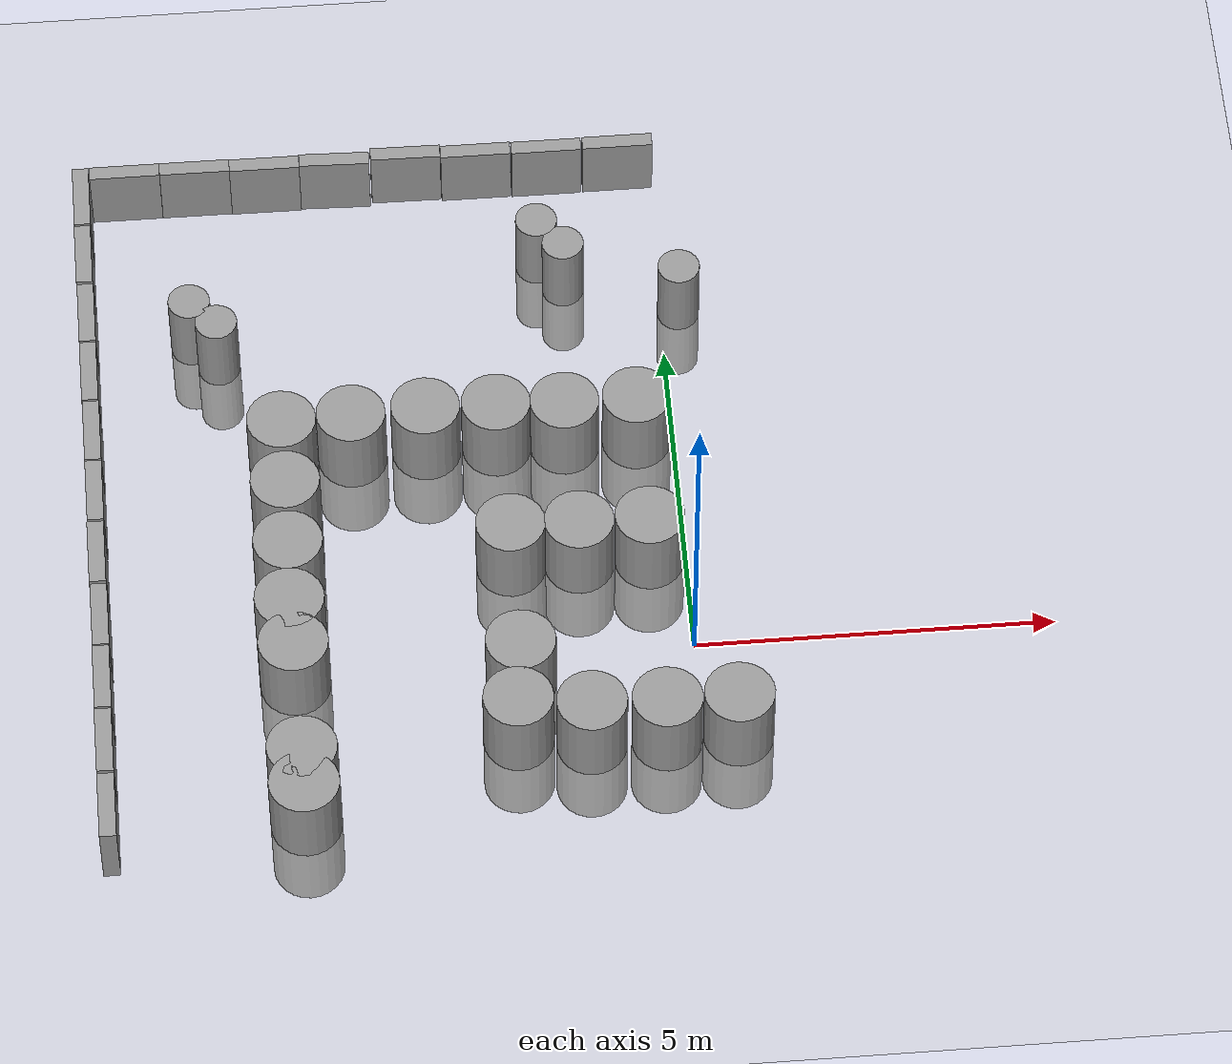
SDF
<sdf version="1.6">
 <world name="default">
  <model name="ground_plane">
   <static>1</static>
   <static>1</static>
   <link name="link">
    <collision name="collision">
     <geometry><plane><normal>0 0 1</normal><size>100 100</size></plane></geometry>
     <surface><friction><ode><mu>100</mu><mu2>50</mu2></ode></friction></surface>
    </collision>
    <visual name="visual">
     <cast_shadows>0</cast_shadows>
     <geometry><plane><normal>0 0 1</normal><size>100 100</size></plane></geometry>
     <material>
      <script><uri>file://media/materials/scripts/gazebo.material</uri><name>Gazebo/Grey</name></script>
     </material>
    </visual>
   </link>
  </model>
  <model name="unit_box_clone">
   <pose>-7.49845 8.11982 0.499998 0 5e-06 0.000244</pose>
   <link name="link">
    <inertial>
     <mass>1</mass>
     <inertia>
      <ixx>0.166667</ixx>
      <ixy>0</ixy>
      <ixz>0</ixz>
      <iyy>0.166667</iyy>
      <iyz>0</iyz>
      <izz>0.166667</izz>
     </inertia>
    </inertial>
    <collision name="collision"><geometry><box><size>1 0.210541 1</size></box></geometry></collision>
    <visual name="visual">
     <geometry><box><size>1 0.210541 1</size></box></geometry>
     <material>
      <script><name>Gazebo/Grey</name><uri>file://media/materials/scripts/gazebo.material</uri></script>
     </material>
    </visual>
   </link>
  </model>
  <model name="unit_box_clone_0">
   <pose>-6.49721 8.11971 0.5 0 0 -0.00255</pose>
   <link name="link">
    <inertial>
     <mass>1</mass>
     <inertia>
      <ixx>0.166667</ixx>
      <ixy>0</ixy>
      <ixz>0</ixz>
      <iyy>0.166667</iyy>
      <iyz>0</iyz>
      <izz>0.166667</izz>
     </inertia>
    </inertial>
    <collision name="collision"><geometry><box><size>1 0.210541 1</size></box></geometry></collision>
    <visual name="visual">
     <geometry><box><size>1 0.210541 1</size></box></geometry>
     <material>
      <script><name>Gazebo/Grey</name><uri>file://media/materials/scripts/gazebo.material</uri></script>
     </material>
    </visual>
   </link>
  </model>
  <model name="unit_box_clone_1">
   <pose>-5.49723 8.10829 0.5 0 0 -0.00255</pose>
   <link name="link">
    <inertial>
     <mass>1</mass>
     <inertia>
      <ixx>0.166667</ixx>
      <ixy>0</ixy>
      <ixz>0</ixz>
      <iyy>0.166667</iyy>
      <iyz>0</iyz>
      <izz>0.166667</izz>
     </inertia>
    </inertial>
    <collision name="collision"><geometry><box><size>1 0.210541 1</size></box></geometry></collision>
    <visual name="visual">
     <geometry><box><size>1 0.210541 1</size></box></geometry>
     <material>
      <script><name>Gazebo/Grey</name><uri>file://media/materials/scripts/gazebo.material</uri></script>
     </material>
    </visual>
   </link>
  </model>
  <model name="unit_box_clone_2">
   <pose>-4.49475 8.11073 0.499999 -1e-06 2e-06 -0.027192</pose>
   <link name="link">
    <inertial>
     <mass>1</mass>
     <inertia>
      <ixx>0.166667</ixx>
      <ixy>0</ixy>
      <ixz>0</ixz>
      <iyy>0.166667</iyy>
      <iyz>0</iyz>
      <izz>0.166667</izz>
     </inertia>
    </inertial>
    <collision name="collision"><geometry><box><size>1 0.210541 1</size></box></geometry></collision>
    <visual name="visual">
     <geometry><box><size>1 0.210541 1</size></box></geometry>
     <material>
      <script><name>Gazebo/Grey</name><uri>file://media/materials/scripts/gazebo.material</uri></script>
     </material>
    </visual>
   </link>
  </model>
  <model name="unit_box_clone_3">
   <pose>-3.46831 8.14903 0.499999 1e-06 2e-06 -0.008519</pose>
   <link name="link">
    <inertial>
     <mass>1</mass>
     <inertia>
      <ixx>0.166667</ixx>
      <ixy>0</ixy>
      <ixz>0</ixz>
      <iyy>0.166667</iyy>
      <iyz>0</iyz>
      <izz>0.166667</izz>
     </inertia>
    </inertial>
    <collision name="collision"><geometry><box><size>1 0.210541 1</size></box></geometry></collision>
    <visual name="visual">
     <geometry><box><size>1 0.210541 1</size></box></geometry>
     <material>
      <script><name>Gazebo/Grey</name><uri>file://media/materials/scripts/gazebo.material</uri></script>
     </material>
    </visual>
   </link>
  </model>
  <model name="unit_box_clone_4">
   <pose>-2.46316 8.11851 0.499998 0 5e-06 0.000244</pose>
   <link name="link">
    <inertial>
     <mass>1</mass>
     <inertia>
      <ixx>0.166667</ixx>
      <ixy>0</ixy>
      <ixz>0</ixz>
      <iyy>0.166667</iyy>
      <iyz>0</iyz>
      <izz>0.166667</izz>
     </inertia>
    </inertial>
    <collision name="collision"><geometry><box><size>1 0.210541 1</size></box></geometry></collision>
    <visual name="visual">
     <geometry><box><size>1 0.210541 1</size></box></geometry>
     <material>
      <script><name>Gazebo/Grey</name><uri>file://media/materials/scripts/gazebo.material</uri></script>
     </material>
    </visual>
   </link>
  </model>
  <model name="unit_box_clone_5">
   <pose>-1.44425 8.11185 0.499998 0 5e-06 0.000244</pose>
   <link name="link">
    <inertial>
     <mass>1</mass>
     <inertia>
      <ixx>0.166667</ixx>
      <ixy>0</ixy>
      <ixz>0</ixz>
      <iyy>0.166667</iyy>
      <iyz>0</iyz>
      <izz>0.166667</izz>
     </inertia>
    </inertial>
    <collision name="collision"><geometry><box><size>1 0.210541 1</size></box></geometry></collision>
    <visual name="visual">
     <geometry><box><size>1 0.210541 1</size></box></geometry>
     <material>
      <script><name>Gazebo/Grey</name><uri>file://media/materials/scripts/gazebo.material</uri></script>
     </material>
    </visual>
   </link>
  </model>
  <model name="unit_box_clone_6">
   <pose>-0.418678 8.1185 0.499998 0 5e-06 0.000244</pose>
   <link name="link">
    <inertial>
     <mass>1</mass>
     <inertia>
      <ixx>0.166667</ixx>
      <ixy>0</ixy>
      <ixz>0</ixz>
      <iyy>0.166667</iyy>
      <iyz>0</iyz>
      <izz>0.166667</izz>
     </inertia>
    </inertial>
    <collision name="collision"><geometry><box><size>1 0.210541 1</size></box></geometry></collision>
    <visual name="visual">
     <geometry><box><size>1 0.210541 1</size></box></geometry>
     <material>
      <script><name>Gazebo/Grey</name><uri>file://media/materials/scripts/gazebo.material</uri></script>
     </material>
    </visual>
   </link>
  </model>
  <model name="unit_box_0_clone_4_clone">
   <pose>-8.12647 7.71767 0.5 0 -0 0.000152</pose>
   <link name="link">
    <inertial>
     <mass>1</mass>
     <inertia>
      <ixx>0.166667</ixx>
      <ixy>0</ixy>
      <ixz>0</ixz>
      <iyy>0.166667</iyy>
      <iyz>0</iyz>
      <izz>0.166667</izz>
     </inertia>
    </inertial>
    <collision name="collision"><geometry><box><size>0.230819 1 1</size></box></geometry></collision>
    <visual name="visual">
     <geometry><box><size>0.230819 1 1</size></box></geometry>
     <material>
      <script><name>Gazebo/Grey</name><uri>file://media/materials/scripts/gazebo.material</uri></script>
     </material>
    </visual>
   </link>
  </model>
  <model name="unit_box_0_clone_4_clone_0">
   <pose>-8.13281 6.68713 0.5 0 -0 0.000152</pose>
   <link name="link">
    <inertial>
     <mass>1</mass>
     <inertia>
      <ixx>0.166667</ixx>
      <ixy>0</ixy>
      <ixz>0</ixz>
      <iyy>0.166667</iyy>
      <iyz>0</iyz>
      <izz>0.166667</izz>
     </inertia>
    </inertial>
    <collision name="collision"><geometry><box><size>0.230819 1 1</size></box></geometry></collision>
    <visual name="visual">
     <geometry><box><size>0.230819 1 1</size></box></geometry>
     <material>
      <script><name>Gazebo/Grey</name><uri>file://media/materials/scripts/gazebo.material</uri></script>
     </material>
    </visual>
   </link>
  </model>
  <model name="unit_box_0_clone_4_clone_1">
   <pose>-8.12606 5.64721 0.5 0 -0 0.000152</pose>
   <link name="link">
    <inertial>
     <mass>1</mass>
     <inertia>
      <ixx>0.166667</ixx>
      <ixy>0</ixy>
      <ixz>0</ixz>
      <iyy>0.166667</iyy>
      <iyz>0</iyz>
      <izz>0.166667</izz>
     </inertia>
    </inertial>
    <collision name="collision"><geometry><box><size>0.230819 1 1</size></box></geometry></collision>
    <visual name="visual">
     <geometry><box><size>0.230819 1 1</size></box></geometry>
     <material>
      <script><name>Gazebo/Grey</name><uri>file://media/materials/scripts/gazebo.material</uri></script>
     </material>
    </visual>
   </link>
  </model>
  <model name="unit_box_0_clone_4_clone_2">
   <pose>-8.12607 4.62079 0.5 0 -0 0.000152</pose>
   <link name="link">
    <inertial>
     <mass>1</mass>
     <inertia>
      <ixx>0.166667</ixx>
      <ixy>0</ixy>
      <ixz>0</ixz>
      <iyy>0.166667</iyy>
      <iyz>0</iyz>
      <izz>0.166667</izz>
     </inertia>
    </inertial>
    <collision name="collision"><geometry><box><size>0.230819 1 1</size></box></geometry></collision>
    <visual name="visual">
     <geometry><box><size>0.230819 1 1</size></box></geometry>
     <material>
      <script><name>Gazebo/Grey</name><uri>file://media/materials/scripts/gazebo.material</uri></script>
     </material>
    </visual>
   </link>
  </model>
  <model name="unit_box_0_clone_4_clone_3">
   <pose>-8.11932 3.59437 0.5 0 -0 0.000152</pose>
   <link name="link">
    <inertial>
     <mass>1</mass>
     <inertia>
      <ixx>0.166667</ixx>
      <ixy>0</ixy>
      <ixz>0</ixz>
      <iyy>0.166667</iyy>
      <iyz>0</iyz>
      <izz>0.166667</izz>
     </inertia>
    </inertial>
    <collision name="collision"><geometry><box><size>0.230819 1 1</size></box></geometry></collision>
    <visual name="visual">
     <geometry><box><size>0.230819 1 1</size></box></geometry>
     <material>
      <script><name>Gazebo/Grey</name><uri>file://media/materials/scripts/gazebo.material</uri></script>
     </material>
    </visual>
   </link>
  </model>
  <model name="unit_box_0_clone_4_clone_4">
   <pose>-8.11932 2.57471 0.5 0 -0 0.000152</pose>
   <link name="link">
    <inertial>
     <mass>1</mass>
     <inertia>
      <ixx>0.166667</ixx>
      <ixy>0</ixy>
      <ixz>0</ixz>
      <iyy>0.166667</iyy>
      <iyz>0</iyz>
      <izz>0.166667</izz>
     </inertia>
    </inertial>
    <collision name="collision"><geometry><box><size>0.230819 1 1</size></box></geometry></collision>
    <visual name="visual">
     <geometry><box><size>0.230819 1 1</size></box></geometry>
     <material>
      <script><name>Gazebo/Grey</name><uri>file://media/materials/scripts/gazebo.material</uri></script>
     </material>
    </visual>
   </link>
  </model>
  <model name="unit_box_0_clone_4_clone_5">
   <pose>-8.12608 1.54154 0.5 0 -0 0.000152</pose>
   <link name="link">
    <inertial>
     <mass>1</mass>
     <inertia>
      <ixx>0.166667</ixx>
      <ixy>0</ixy>
      <ixz>0</ixz>
      <iyy>0.166667</iyy>
      <iyz>0</iyz>
      <izz>0.166667</izz>
     </inertia>
    </inertial>
    <collision name="collision"><geometry><box><size>0.230819 1 1</size></box></geometry></collision>
    <visual name="visual">
     <geometry><box><size>0.230819 1 1</size></box></geometry>
     <material>
      <script><name>Gazebo/Grey</name><uri>file://media/materials/scripts/gazebo.material</uri></script>
     </material>
    </visual>
   </link>
  </model>
  <model name="unit_box_0_clone_4_clone_6">
   <pose>-8.11933 0.501621 0.5 0 -0 0.000152</pose>
   <link name="link">
    <inertial>
     <mass>1</mass>
     <inertia>
      <ixx>0.166667</ixx>
      <ixy>0</ixy>
      <ixz>0</ixz>
      <iyy>0.166667</iyy>
      <iyz>0</iyz>
      <izz>0.166667</izz>
     </inertia>
    </inertial>
    <collision name="collision"><geometry><box><size>0.230819 1 1</size></box></geometry></collision>
    <visual name="visual">
     <geometry><box><size>0.230819 1 1</size></box></geometry>
     <material>
      <script><name>Gazebo/Grey</name><uri>file://media/materials/scripts/gazebo.material</uri></script>
     </material>
    </visual>
   </link>
  </model>
  <model name="unit_box_0_clone_4_clone_7">
   <pose>-8.12609 -0.518043 0.5 0 -0 0.000152</pose>
   <link name="link">
    <inertial>
     <mass>1</mass>
     <inertia>
      <ixx>0.166667</ixx>
      <ixy>0</ixy>
      <ixz>0</ixz>
      <iyy>0.166667</iyy>
      <iyz>0</iyz>
      <izz>0.166667</izz>
     </inertia>
    </inertial>
    <collision name="collision"><geometry><box><size>0.230819 1 1</size></box></geometry></collision>
    <visual name="visual">
     <geometry><box><size>0.230819 1 1</size></box></geometry>
     <material>
      <script><name>Gazebo/Grey</name><uri>file://media/materials/scripts/gazebo.material</uri></script>
     </material>
    </visual>
   </link>
  </model>
  <model name="unit_box_0_clone_4_clone_8">
   <pose>-8.13284 -1.54447 0.5 0 -0 0.000152</pose>
   <link name="link">
    <inertial>
     <mass>1</mass>
     <inertia>
      <ixx>0.166667</ixx>
      <ixy>0</ixy>
      <ixz>0</ixz>
      <iyy>0.166667</iyy>
      <iyz>0</iyz>
      <izz>0.166667</izz>
     </inertia>
    </inertial>
    <collision name="collision"><geometry><box><size>0.230819 1 1</size></box></geometry></collision>
    <visual name="visual">
     <geometry><box><size>0.230819 1 1</size></box></geometry>
     <material>
      <script><name>Gazebo/Grey</name><uri>file://media/materials/scripts/gazebo.material</uri></script>
     </material>
    </visual>
   </link>
  </model>
  <model name="unit_box_0_clone_4_clone_9">
   <pose>-8.13285 -2.58439 0.5 0 -0 0.000152</pose>
   <link name="link">
    <inertial>
     <mass>1</mass>
     <inertia>
      <ixx>0.166667</ixx>
      <ixy>0</ixy>
      <ixz>0</ixz>
      <iyy>0.166667</iyy>
      <iyz>0</iyz>
      <izz>0.166667</izz>
     </inertia>
    </inertial>
    <collision name="collision"><geometry><box><size>0.230819 1 1</size></box></geometry></collision>
    <visual name="visual">
     <geometry><box><size>0.230819 1 1</size></box></geometry>
     <material>
      <script><name>Gazebo/Grey</name><uri>file://media/materials/scripts/gazebo.material</uri></script>
     </material>
    </visual>
   </link>
  </model>
  <model name="unit_cylinder_153_clone_clone_5_clone_clone_13_clone_0_clone_29_clone_32_clone_0_clone_4_clone_46_clone_42_clone_clone_clone_3">
   <static>1</static>
   <pose>-0.503744 1.48551 0 0 -0 0</pose>
   <link name="link">
    <inertial>
     <mass>1</mass>
     <inertia><ixx>0.145833</ixx><ixy>0</ixy><ixz>0</ixz><iyy>0.145833</iyy><iyz>0</iyz><izz>0.125</izz></inertia>
    </inertial>
    <collision name="collision">
     <geometry><cylinder><radius>0.484115</radius><length>2.18667</length></cylinder></geometry>
    </collision>
    <visual name="visual">
     <geometry><cylinder><radius>0.484115</radius><length>2.18667</length></cylinder></geometry>
     <material>
      <script><name>Gazebo/Grey</name><uri>file://media/materials/scripts/gazebo.material</uri></script>
     </material>
    </visual>
   </link>
  </model>
  <model name="unit_cylinder_153_clone_clone_5_clone_clone_13_clone_0_clone_29_clone_32_clone_0_clone_4_clone_46_clone_42_clone_clone_clone_3_clone">
   <static>1</static>
   <pose>-1.48031 1.48714 0 0 -0 0</pose>
   <link name="link">
    <inertial>
     <mass>1</mass>
     <inertia><ixx>0.145833</ixx><ixy>0</ixy><ixz>0</ixz><iyy>0.145833</iyy><iyz>0</iyz><izz>0.125</izz></inertia>
    </inertial>
    <collision name="collision">
     <geometry><cylinder><radius>0.484115</radius><length>2.18667</length></cylinder></geometry>
    </collision>
    <visual name="visual">
     <geometry><cylinder><radius>0.484115</radius><length>2.18667</length></cylinder></geometry>
     <material>
      <script><name>Gazebo/Grey</name><uri>file://media/materials/scripts/gazebo.material</uri></script>
     </material>
    </visual>
   </link>
  </model>
  <model name="unit_cylinder_153_clone_clone_5_clone_clone_13_clone_0_clone_29_clone_32_clone_0_clone_4_clone_46_clone_42_clone_clone_clone_3_clone_0">
   <static>1</static>
   <pose>-2.42709 1.51206 0 0 -0 0</pose>
   <link name="link">
    <inertial>
     <mass>1</mass>
     <inertia><ixx>0.145833</ixx><ixy>0</ixy><ixz>0</ixz><iyy>0.145833</iyy><iyz>0</iyz><izz>0.125</izz></inertia>
    </inertial>
    <collision name="collision">
     <geometry><cylinder><radius>0.484115</radius><length>2.18667</length></cylinder></geometry>
    </collision>
    <visual name="visual">
     <geometry><cylinder><radius>0.484115</radius><length>2.18667</length></cylinder></geometry>
     <material>
      <script><name>Gazebo/Grey</name><uri>file://media/materials/scripts/gazebo.material</uri></script>
     </material>
    </visual>
   </link>
  </model>
  <model name="unit_cylinder_153_clone_clone_5_clone_clone_13_clone_0_clone_29_clone_32_clone_0_clone_4_clone_46_clone_42_clone_clone_clone_3_clone_2">
   <static>1</static>
   <pose>-2.4271 -0.431337 0 0 -0 0</pose>
   <link name="link">
    <inertial>
     <mass>1</mass>
     <inertia><ixx>0.145833</ixx><ixy>0</ixy><ixz>0</ixz><iyy>0.145833</iyy><iyz>0</iyz><izz>0.125</izz></inertia>
    </inertial>
    <collision name="collision">
     <geometry><cylinder><radius>0.484115</radius><length>2.18667</length></cylinder></geometry>
    </collision>
    <visual name="visual">
     <geometry><cylinder><radius>0.484115</radius><length>2.18667</length></cylinder></geometry>
     <material>
      <script><name>Gazebo/Grey</name><uri>file://media/materials/scripts/gazebo.material</uri></script>
     </material>
    </visual>
   </link>
  </model>
  <model name="unit_cylinder_153_clone_clone_5_clone_clone_13_clone_0_clone_29_clone_32_clone_0_clone_4_clone_46_clone_42_clone_clone_clone_3_clone_3">
   <static>1</static>
   <pose>-2.52677 -1.35321 0 0 -0 0</pose>
   <link name="link">
    <inertial>
     <mass>1</mass>
     <inertia><ixx>0.145833</ixx><ixy>0</ixy><ixz>0</ixz><iyy>0.145833</iyy><iyz>0</iyz><izz>0.125</izz></inertia>
    </inertial>
    <collision name="collision">
     <geometry><cylinder><radius>0.484115</radius><length>2.18667</length></cylinder></geometry>
    </collision>
    <visual name="visual">
     <geometry><cylinder><radius>0.484115</radius><length>2.18667</length></cylinder></geometry>
     <material>
      <script><name>Gazebo/Grey</name><uri>file://media/materials/scripts/gazebo.material</uri></script>
     </material>
    </visual>
   </link>
  </model>
  <model name="unit_cylinder_153_clone_clone_5_clone_clone_13_clone_0_clone_29_clone_32_clone_0_clone_4_clone_46_clone_42_clone_clone_clone_3_clone_4">
   <static>1</static>
   <pose>-1.53871 -1.49764 0 0 -0 0</pose>
   <link name="link">
    <inertial>
     <mass>1</mass>
     <inertia><ixx>0.145833</ixx><ixy>0</ixy><ixz>0</ixz><iyy>0.145833</iyy><iyz>0</iyz><izz>0.125</izz></inertia>
    </inertial>
    <collision name="collision">
     <geometry><cylinder><radius>0.484115</radius><length>2.18667</length></cylinder></geometry>
    </collision>
    <visual name="visual">
     <geometry><cylinder><radius>0.484115</radius><length>2.18667</length></cylinder></geometry>
     <material>
      <script><name>Gazebo/Grey</name><uri>file://media/materials/scripts/gazebo.material</uri></script>
     </material>
    </visual>
   </link>
  </model>
  <model name="unit_cylinder_153_clone_clone_5_clone_clone_13_clone_0_clone_29_clone_32_clone_0_clone_4_clone_46_clone_42_clone_clone_clone_3_clone_5">
   <static>1</static>
   <pose>-0.516087 -1.5194 0 0 -0 0</pose>
   <link name="link">
    <inertial>
     <mass>1</mass>
     <inertia><ixx>0.145833</ixx><ixy>0</ixy><ixz>0</ixz><iyy>0.145833</iyy><iyz>0</iyz><izz>0.125</izz></inertia>
    </inertial>
    <collision name="collision">
     <geometry><cylinder><radius>0.484115</radius><length>2.18667</length></cylinder></geometry>
    </collision>
    <visual name="visual">
     <geometry><cylinder><radius>0.484115</radius><length>2.18667</length></cylinder></geometry>
     <material>
      <script><name>Gazebo/Grey</name><uri>file://media/materials/scripts/gazebo.material</uri></script>
     </material>
    </visual>
   </link>
  </model>
  <model name="unit_cylinder_153_clone_clone_5_clone_clone_13_clone_0_clone_29_clone_32_clone_0_clone_4_clone_46_clone_42_clone_clone_clone_3_clone_6">
   <static>1</static>
   <pose>0.463016 -1.51941 0 0 -0 0</pose>
   <link name="link">
    <inertial>
     <mass>1</mass>
     <inertia><ixx>0.145833</ixx><ixy>0</ixy><ixz>0</ixz><iyy>0.145833</iyy><iyz>0</iyz><izz>0.125</izz></inertia>
    </inertial>
    <collision name="collision">
     <geometry><cylinder><radius>0.484115</radius><length>2.18667</length></cylinder></geometry>
    </collision>
    <visual name="visual">
     <geometry><cylinder><radius>0.484115</radius><length>2.18667</length></cylinder></geometry>
     <material>
      <script><name>Gazebo/Grey</name><uri>file://media/materials/scripts/gazebo.material</uri></script>
     </material>
    </visual>
   </link>
  </model>
  <model name="unit_cylinder_153_clone_clone_5_clone_clone_13_clone_0_clone_29_clone_32_clone_0_clone_4_clone_46_clone_42_clone_clone_clone_3_clone_21">
   <static>1</static>
   <pose>-5.48277 -2.48738 0 0 -0 0</pose>
   <link name="link">
    <inertial>
     <mass>1</mass>
     <inertia><ixx>0.145833</ixx><ixy>0</ixy><ixz>0</ixz><iyy>0.145833</iyy><iyz>0</iyz><izz>0.125</izz></inertia>
    </inertial>
    <collision name="collision">
     <geometry><cylinder><radius>0.484115</radius><length>2.18667</length></cylinder></geometry>
    </collision>
    <visual name="visual">
     <geometry><cylinder><radius>0.484115</radius><length>2.18667</length></cylinder></geometry>
     <material>
      <script><name>Gazebo/Grey</name><uri>file://media/materials/scripts/gazebo.material</uri></script>
     </material>
    </visual>
   </link>
  </model>
  <model name="unit_cylinder_153_clone_clone_5_clone_clone_13_clone_0_clone_29_clone_32_clone_0_clone_4_clone_46_clone_42_clone_clone_clone_3_clone_22">
   <static>1</static>
   <pose>-5.48277 -1.91637 0 0 -0 0</pose>
   <link name="link">
    <inertial>
     <mass>1</mass>
     <inertia><ixx>0.145833</ixx><ixy>0</ixy><ixz>0</ixz><iyy>0.145833</iyy><iyz>0</iyz><izz>0.125</izz></inertia>
    </inertial>
    <collision name="collision">
     <geometry><cylinder><radius>0.484115</radius><length>2.18667</length></cylinder></geometry>
    </collision>
    <visual name="visual">
     <geometry><cylinder><radius>0.484115</radius><length>2.18667</length></cylinder></geometry>
     <material>
      <script><name>Gazebo/Grey</name><uri>file://media/materials/scripts/gazebo.material</uri></script>
     </material>
    </visual>
   </link>
  </model>
  <model name="unit_cylinder_153_clone_clone_5_clone_clone_13_clone_0_clone_29_clone_32_clone_0_clone_4_clone_46_clone_42_clone_clone_clone_3_clone_23">
   <static>1</static>
   <pose>-5.51131 -0.217603 0 0 -0 0</pose>
   <link name="link">
    <inertial>
     <mass>1</mass>
     <inertia><ixx>0.145833</ixx><ixy>0</ixy><ixz>0</ixz><iyy>0.145833</iyy><iyz>0</iyz><izz>0.125</izz></inertia>
    </inertial>
    <collision name="collision">
     <geometry><cylinder><radius>0.484115</radius><length>2.18667</length></cylinder></geometry>
    </collision>
    <visual name="visual">
     <geometry><cylinder><radius>0.484115</radius><length>2.18667</length></cylinder></geometry>
     <material>
      <script><name>Gazebo/Grey</name><uri>file://media/materials/scripts/gazebo.material</uri></script>
     </material>
    </visual>
   </link>
  </model>
  <model name="unit_cylinder_153_clone_clone_5_clone_clone_13_clone_0_clone_29_clone_32_clone_0_clone_4_clone_46_clone_42_clone_clone_clone_3_clone_24">
   <static>1</static>
   <pose>-5.52558 0.510438 0 0 -0 0</pose>
   <link name="link">
    <inertial>
     <mass>1</mass>
     <inertia><ixx>0.145833</ixx><ixy>0</ixy><ixz>0</ixz><iyy>0.145833</iyy><iyz>0</iyz><izz>0.125</izz></inertia>
    </inertial>
    <collision name="collision">
     <geometry><cylinder><radius>0.484115</radius><length>2.18667</length></cylinder></geometry>
    </collision>
    <visual name="visual">
     <geometry><cylinder><radius>0.484115</radius><length>2.18667</length></cylinder></geometry>
     <material>
      <script><name>Gazebo/Grey</name><uri>file://media/materials/scripts/gazebo.material</uri></script>
     </material>
    </visual>
   </link>
  </model>
  <model name="unit_cylinder_153_clone_clone_5_clone_clone_13_clone_0_clone_29_clone_32_clone_0_clone_4_clone_46_clone_42_clone_clone_clone_3_clone_25">
   <static>1</static>
   <pose>-5.49703 1.46688 0 0 -0 0</pose>
   <link name="link">
    <inertial>
     <mass>1</mass>
     <inertia><ixx>0.145833</ixx><ixy>0</ixy><ixz>0</ixz><iyy>0.145833</iyy><iyz>0</iyz><izz>0.125</izz></inertia>
    </inertial>
    <collision name="collision">
     <geometry><cylinder><radius>0.484115</radius><length>2.18667</length></cylinder></geometry>
    </collision>
    <visual name="visual">
     <geometry><cylinder><radius>0.484115</radius><length>2.18667</length></cylinder></geometry>
     <material>
      <script><name>Gazebo/Grey</name><uri>file://media/materials/scripts/gazebo.material</uri></script>
     </material>
    </visual>
   </link>
  </model>
  <model name="unit_cylinder_153_clone_clone_5_clone_clone_13_clone_0_clone_29_clone_32_clone_0_clone_4_clone_46_clone_42_clone_clone_clone_3_clone_26">
   <static>1</static>
   <pose>-5.48275 2.48043 0 0 -0 0</pose>
   <link name="link">
    <inertial>
     <mass>1</mass>
     <inertia><ixx>0.145833</ixx><ixy>0</ixy><ixz>0</ixz><iyy>0.145833</iyy><iyz>0</iyz><izz>0.125</izz></inertia>
    </inertial>
    <collision name="collision">
     <geometry><cylinder><radius>0.484115</radius><length>2.18667</length></cylinder></geometry>
    </collision>
    <visual name="visual">
     <geometry><cylinder><radius>0.484115</radius><length>2.18667</length></cylinder></geometry>
     <material>
      <script><name>Gazebo/Grey</name><uri>file://media/materials/scripts/gazebo.material</uri></script>
     </material>
    </visual>
   </link>
  </model>
  <model name="unit_cylinder_153_clone_clone_5_clone_clone_13_clone_0_clone_29_clone_32_clone_0_clone_4_clone_46_clone_42_clone_clone_clone_3_clone_27">
   <static>1</static>
   <pose>-5.48274 3.50825 0 0 -0 0</pose>
   <link name="link">
    <inertial>
     <mass>1</mass>
     <inertia><ixx>0.145833</ixx><ixy>0</ixy><ixz>0</ixz><iyy>0.145833</iyy><iyz>0</iyz><izz>0.125</izz></inertia>
    </inertial>
    <collision name="collision">
     <geometry><cylinder><radius>0.484115</radius><length>2.18667</length></cylinder></geometry>
    </collision>
    <visual name="visual">
     <geometry><cylinder><radius>0.484115</radius><length>2.18667</length></cylinder></geometry>
     <material>
      <script><name>Gazebo/Grey</name><uri>file://media/materials/scripts/gazebo.material</uri></script>
     </material>
    </visual>
   </link>
  </model>
  <model name="unit_cylinder_153_clone_clone_5_clone_clone_13_clone_0_clone_29_clone_32_clone_0_clone_4_clone_46_clone_42_clone_clone_clone_3_clone_28">
   <static>1</static>
   <pose>-4.51202 3.5368 0 0 -0 0</pose>
   <link name="link">
    <inertial>
     <mass>1</mass>
     <inertia><ixx>0.145833</ixx><ixy>0</ixy><ixz>0</ixz><iyy>0.145833</iyy><iyz>0</iyz><izz>0.125</izz></inertia>
    </inertial>
    <collision name="collision">
     <geometry><cylinder><radius>0.484115</radius><length>2.18667</length></cylinder></geometry>
    </collision>
    <visual name="visual">
     <geometry><cylinder><radius>0.484115</radius><length>2.18667</length></cylinder></geometry>
     <material>
      <script><name>Gazebo/Grey</name><uri>file://media/materials/scripts/gazebo.material</uri></script>
     </material>
    </visual>
   </link>
  </model>
  <model name="unit_cylinder_153_clone_clone_5_clone_clone_13_clone_0_clone_29_clone_32_clone_0_clone_4_clone_46_clone_42_clone_clone_clone_3_clone_29">
   <static>1</static>
   <pose>-3.46992 3.57962 0 0 -0 0</pose>
   <link name="link">
    <inertial>
     <mass>1</mass>
     <inertia><ixx>0.145833</ixx><ixy>0</ixy><ixz>0</ixz><iyy>0.145833</iyy><iyz>0</iyz><izz>0.125</izz></inertia>
    </inertial>
    <collision name="collision">
     <geometry><cylinder><radius>0.484115</radius><length>2.18667</length></cylinder></geometry>
    </collision>
    <visual name="visual">
     <geometry><cylinder><radius>0.484115</radius><length>2.18667</length></cylinder></geometry>
     <material>
      <script><name>Gazebo/Grey</name><uri>file://media/materials/scripts/gazebo.material</uri></script>
     </material>
    </visual>
   </link>
  </model>
  <model name="unit_cylinder_153_clone_clone_5_clone_clone_13_clone_0_clone_29_clone_32_clone_0_clone_4_clone_46_clone_42_clone_clone_clone_3_clone_30">
   <static>1</static>
   <pose>-2.48493 3.56534 0 0 -0 0</pose>
   <link name="link">
    <inertial>
     <mass>1</mass>
     <inertia><ixx>0.145833</ixx><ixy>0</ixy><ixz>0</ixz><iyy>0.145833</iyy><iyz>0</iyz><izz>0.125</izz></inertia>
    </inertial>
    <collision name="collision">
     <geometry><cylinder><radius>0.484115</radius><length>2.18667</length></cylinder></geometry>
    </collision>
    <visual name="visual">
     <geometry><cylinder><radius>0.484115</radius><length>2.18667</length></cylinder></geometry>
     <material>
      <script><name>Gazebo/Grey</name><uri>file://media/materials/scripts/gazebo.material</uri></script>
     </material>
    </visual>
   </link>
  </model>
  <model name="unit_cylinder_153_clone_clone_5_clone_clone_13_clone_0_clone_29_clone_32_clone_0_clone_4_clone_46_clone_42_clone_clone_clone_3_clone_31">
   <static>1</static>
   <pose>-1.52848 3.52251 0 0 -0 0</pose>
   <link name="link">
    <inertial>
     <mass>1</mass>
     <inertia><ixx>0.145833</ixx><ixy>0</ixy><ixz>0</ixz><iyy>0.145833</iyy><iyz>0</iyz><izz>0.125</izz></inertia>
    </inertial>
    <collision name="collision">
     <geometry><cylinder><radius>0.484115</radius><length>2.18667</length></cylinder></geometry>
    </collision>
    <visual name="visual">
     <geometry><cylinder><radius>0.484115</radius><length>2.18667</length></cylinder></geometry>
     <material>
      <script><name>Gazebo/Grey</name><uri>file://media/materials/scripts/gazebo.material</uri></script>
     </material>
    </visual>
   </link>
  </model>
  <model name="unit_cylinder_153_clone_clone_5_clone_clone_13_clone_0_clone_29_clone_32_clone_0_clone_4_clone_46_clone_42_clone_clone_clone_3_clone_32">
   <static>1</static>
   <pose>-0.514932 3.53678 0 0 -0 0</pose>
   <link name="link">
    <inertial>
     <mass>1</mass>
     <inertia><ixx>0.145833</ixx><ixy>0</ixy><ixz>0</ixz><iyy>0.145833</iyy><iyz>0</iyz><izz>0.125</izz></inertia>
    </inertial>
    <collision name="collision">
     <geometry><cylinder><radius>0.484115</radius><length>2.18667</length></cylinder></geometry>
    </collision>
    <visual name="visual">
     <geometry><cylinder><radius>0.484115</radius><length>2.18667</length></cylinder></geometry>
     <material>
      <script><name>Gazebo/Grey</name><uri>file://media/materials/scripts/gazebo.material</uri></script>
     </material>
    </visual>
   </link>
  </model>
  <model name="unit_cylinder_153_clone_clone_5_clone_clone_13_clone_0_clone_29_clone_32_clone_0_clone_4_clone_46_clone_42_clone_clone_clone_4_clone_2_clone">
   <static>1</static>
   <pose>-1.68816 6.71615 0 0 -0 0</pose>
   <link name="link">
    <inertial>
     <mass>1</mass>
     <inertia><ixx>0.145833</ixx><ixy>0</ixy><ixz>0</ixz><iyy>0.145833</iyy><iyz>0</iyz><izz>0.125</izz></inertia>
    </inertial>
    <collision name="collision">
     <geometry><cylinder><radius>0.295479</radius><length>2.18667</length></cylinder></geometry>
    </collision>
    <visual name="visual">
     <geometry><cylinder><radius>0.295479</radius><length>2.18667</length></cylinder></geometry>
     <material>
      <script><name>Gazebo/Grey</name><uri>file://media/materials/scripts/gazebo.material</uri></script>
     </material>
    </visual>
   </link>
  </model>
  <model name="unit_cylinder_153_clone_clone_5_clone_clone_13_clone_0_clone_29_clone_32_clone_0_clone_4_clone_46_clone_42_clone_clone_clone_4_clone_2_clone_0">
   <static>1</static>
   <pose>-1.34137 6.27811 0 0 -0 0</pose>
   <link name="link">
    <inertial>
     <mass>1</mass>
     <inertia><ixx>0.145833</ixx><ixy>0</ixy><ixz>0</ixz><iyy>0.145833</iyy><iyz>0</iyz><izz>0.125</izz></inertia>
    </inertial>
    <collision name="collision">
     <geometry><cylinder><radius>0.295479</radius><length>2.18667</length></cylinder></geometry>
    </collision>
    <visual name="visual">
     <geometry><cylinder><radius>0.295479</radius><length>2.18667</length></cylinder></geometry>
     <material>
      <script><name>Gazebo/Grey</name><uri>file://media/materials/scripts/gazebo.material</uri></script>
     </material>
    </visual>
   </link>
  </model>
  <model name="unit_cylinder_153_clone_clone_5_clone_clone_13_clone_0_clone_29_clone_32_clone_0_clone_4_clone_46_clone_42_clone_clone_clone_4_clone_2_clone_1">
   <static>1</static>
   <pose>0.264775 5.73054 0 0 -0 0</pose>
   <link name="link">
    <inertial>
     <mass>1</mass>
     <inertia><ixx>0.145833</ixx><ixy>0</ixy><ixz>0</ixz><iyy>0.145833</iyy><iyz>0</iyz><izz>0.125</izz></inertia>
    </inertial>
    <collision name="collision">
     <geometry><cylinder><radius>0.295479</radius><length>2.18667</length></cylinder></geometry>
    </collision>
    <visual name="visual">
     <geometry><cylinder><radius>0.295479</radius><length>2.18667</length></cylinder></geometry>
     <material>
      <script><name>Gazebo/Grey</name><uri>file://media/materials/scripts/gazebo.material</uri></script>
     </material>
    </visual>
   </link>
  </model>
  <model name="unit_cylinder_153_clone_clone_5_clone_clone_13_clone_0_clone_29_clone_32_clone_0_clone_4_clone_46_clone_42_clone_clone_clone_4_clone_2_clone_15">
   <static>1</static>
   <pose>-6.67563 5.65583 0 0 -0 0</pose>
   <link name="link">
    <inertial>
     <mass>1</mass>
     <inertia><ixx>0.145833</ixx><ixy>0</ixy><ixz>0</ixz><iyy>0.145833</iyy><iyz>0</iyz><izz>0.125</izz></inertia>
    </inertial>
    <collision name="collision">
     <geometry><cylinder><radius>0.295479</radius><length>2.18667</length></cylinder></geometry>
    </collision>
    <visual name="visual">
     <geometry><cylinder><radius>0.295479</radius><length>2.18667</length></cylinder></geometry>
     <material>
      <script><name>Gazebo/Grey</name><uri>file://media/materials/scripts/gazebo.material</uri></script>
     </material>
    </visual>
   </link>
  </model>
  <model name="unit_cylinder_153_clone_clone_5_clone_clone_13_clone_0_clone_29_clone_32_clone_0_clone_4_clone_46_clone_42_clone_clone_clone_4_clone_2_clone_16">
   <static>1</static>
   <pose>-6.30946 5.26524 0 0 -0 0</pose>
   <link name="link">
    <inertial>
     <mass>1</mass>
     <inertia><ixx>0.145833</ixx><ixy>0</ixy><ixz>0</ixz><iyy>0.145833</iyy><iyz>0</iyz><izz>0.125</izz></inertia>
    </inertial>
    <collision name="collision">
     <geometry><cylinder><radius>0.295479</radius><length>2.18667</length></cylinder></geometry>
    </collision>
    <visual name="visual">
     <geometry><cylinder><radius>0.295479</radius><length>2.18667</length></cylinder></geometry>
     <material>
      <script><name>Gazebo/Grey</name><uri>file://media/materials/scripts/gazebo.material</uri></script>
     </material>
    </visual>
   </link>
  </model>
 </world>
</sdf>
